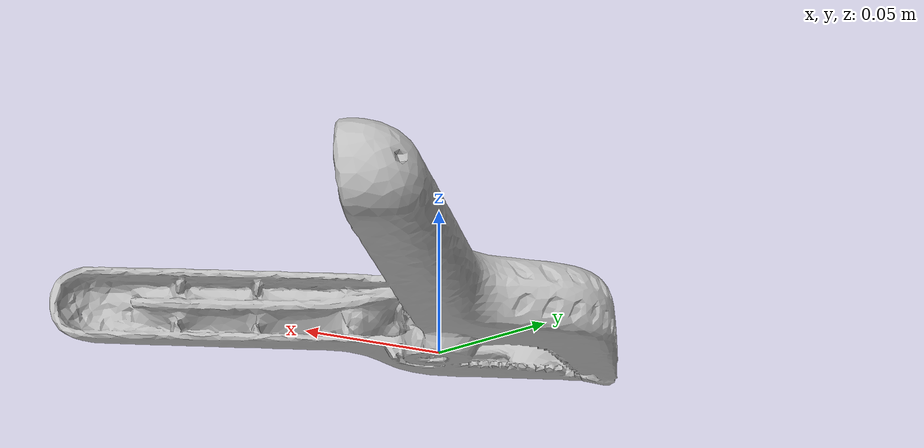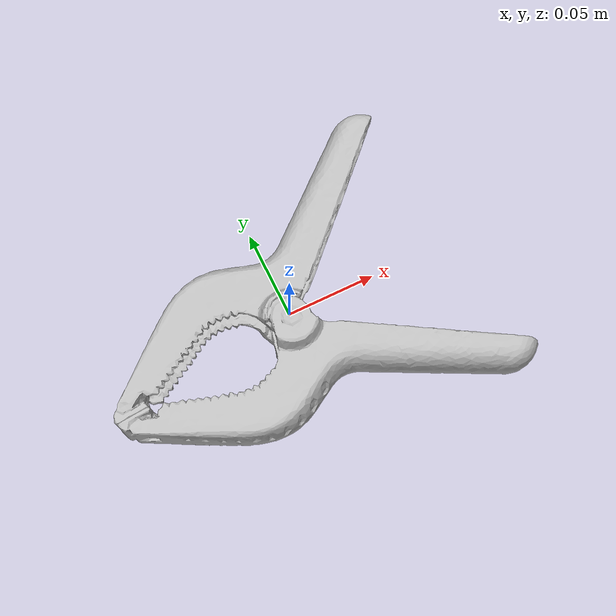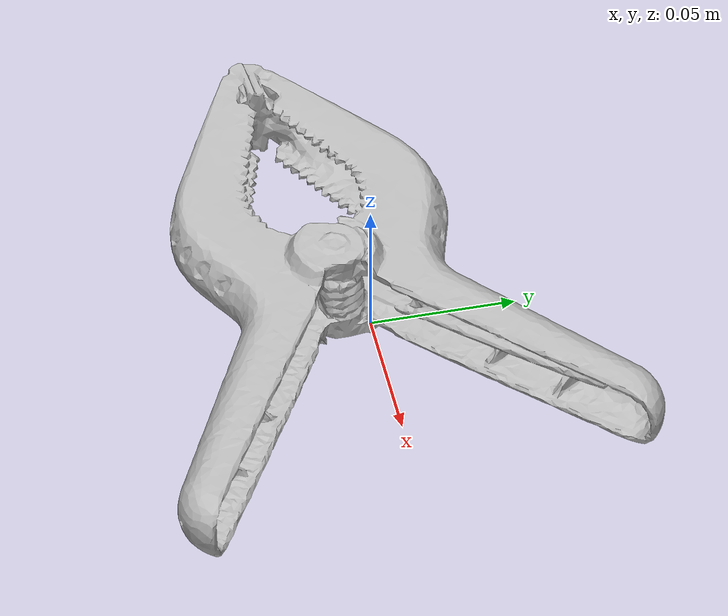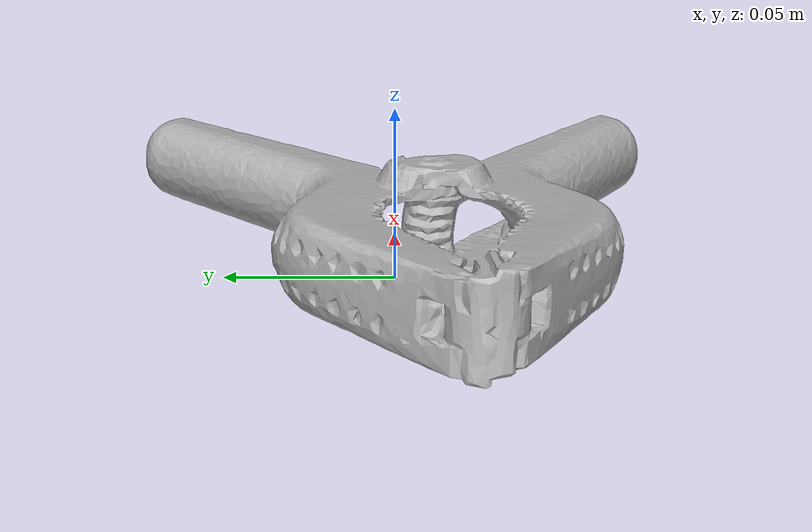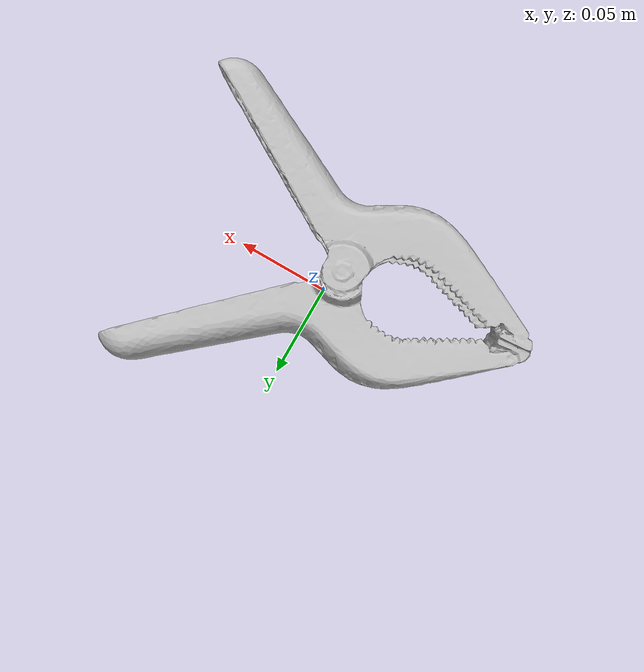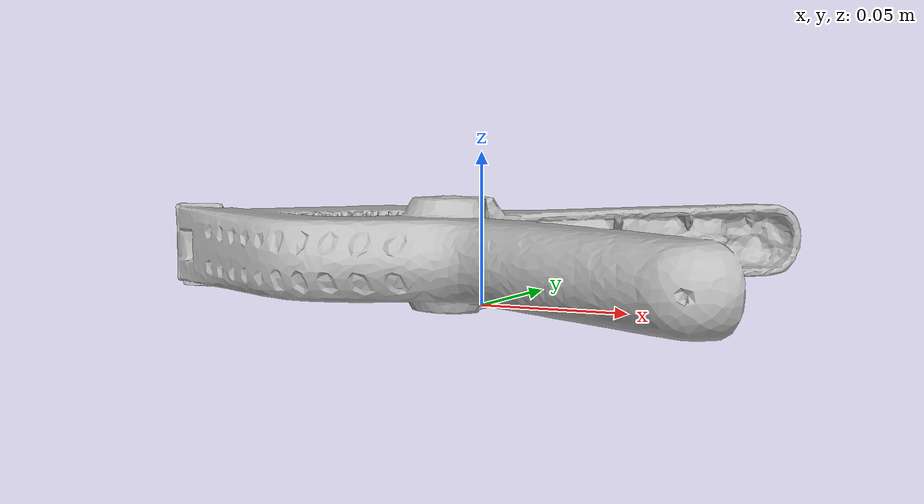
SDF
<?xml version="1.0" ?>
<sdf version='1.8'>
  <model name='ycb_052_extra_large_clamp'>
    <link name='body'>
      <inertial>
        <mass>0.202</mass>
        <pose>-0.00983593405 -0.011851381 0.0182569437 0 0 0</pose>
        <inertia>
          <ixx>0.000297412158172</ixx>
          <ixy>-2.58338243174e-05</ixy>
          <ixz>2.88445389814e-07</ixz>
          <iyy>0.000499324764363</iyy>
          <iyz>-2.01241360067e-06</iyz>
          <izz>0.000769346817989</izz>
        </inertia>
      </inertial>
      <visual name='ycb_052_extra_large_clamp_visual'>
        <pose>0.019714 0.024754 0.000178 0 0 0</pose>
        <geometry>
          <mesh>
            <uri>model://ycb_052_extra_large_clamp/meshes/textured.dae</uri>
          </mesh>
        </geometry>
      </visual>
      <collision name='ycb_052_extra_large_clamp_collision'>
        <pose>0.019714 0.024754 0.000178 0 0 0</pose>
        <geometry>
          <mesh>
            <uri>model://ycb_052_extra_large_clamp/meshes/nontextured.stl</uri>
          </mesh>
        </geometry>
        <max_contacts>10</max_contacts>
        <surface>
          <contact>
            <ode>
              <kp>1e15</kp>
              <kd>1e13</kd>
            </ode>
          </contact>
        </surface>
      </collision>
    </link>
  </model>
</sdf>
